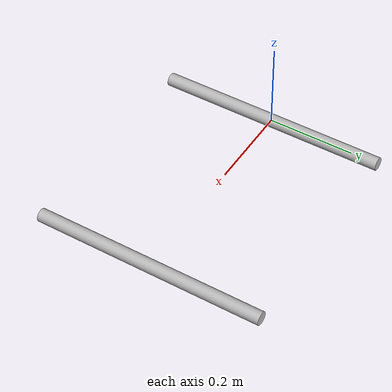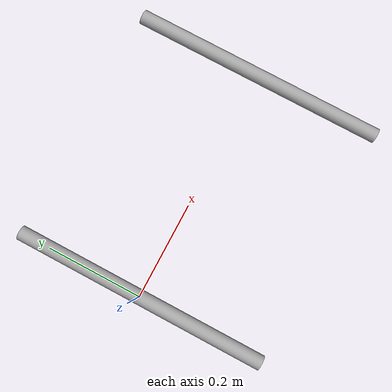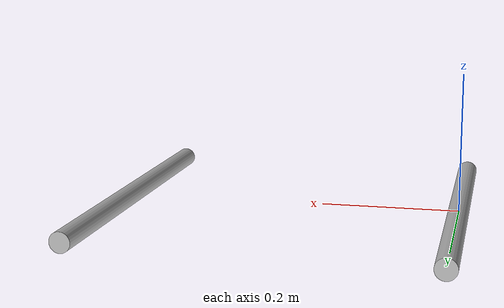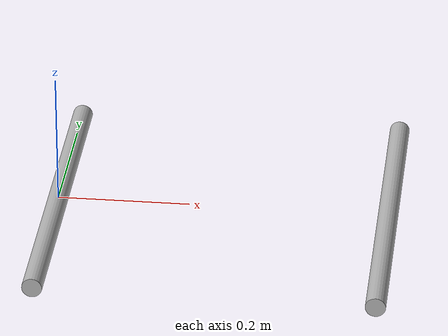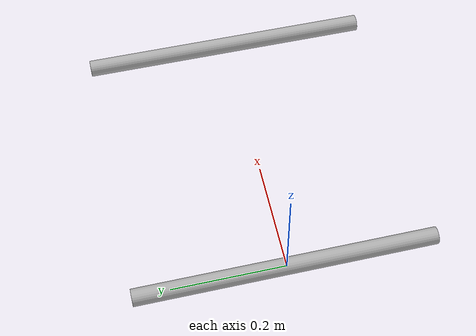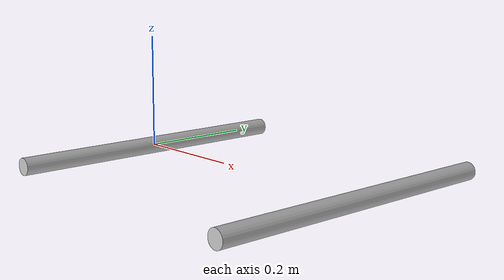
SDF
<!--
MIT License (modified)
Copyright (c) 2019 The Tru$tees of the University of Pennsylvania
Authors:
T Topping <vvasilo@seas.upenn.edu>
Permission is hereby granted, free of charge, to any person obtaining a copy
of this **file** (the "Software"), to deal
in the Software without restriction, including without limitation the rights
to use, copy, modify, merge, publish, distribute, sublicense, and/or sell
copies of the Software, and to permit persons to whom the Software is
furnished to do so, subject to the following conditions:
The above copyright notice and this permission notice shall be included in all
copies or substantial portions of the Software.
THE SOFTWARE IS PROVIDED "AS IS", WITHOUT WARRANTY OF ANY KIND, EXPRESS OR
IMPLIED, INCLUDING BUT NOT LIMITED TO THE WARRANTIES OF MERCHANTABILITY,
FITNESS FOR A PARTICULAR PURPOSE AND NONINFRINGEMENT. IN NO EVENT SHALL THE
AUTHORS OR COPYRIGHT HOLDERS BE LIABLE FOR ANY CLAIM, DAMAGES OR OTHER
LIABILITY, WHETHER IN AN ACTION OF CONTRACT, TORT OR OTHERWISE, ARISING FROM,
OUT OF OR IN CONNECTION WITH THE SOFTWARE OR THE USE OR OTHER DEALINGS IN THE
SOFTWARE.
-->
<?xml version='1.0'?>

<sdf version='1.6'>
  <model name='bars'>
  <static>true</static>
    <link name='bar1'>
      <pose frame=''>0 0 0 0 -0 0</pose>
      <inertial>
        <mass>1</mass>
        <inertia>
          <ixx>4.78</ixx>
          <ixy>0</ixy>
          <ixz>0</ixz>
          <iyy>6.26</iyy>
          <iyz>0</iyz>
          <izz>8.235</izz>
        </inertia>
        <pose frame=''>0 0 0.0 1.571 -0 0</pose>
      </inertial>
      <gravity>1</gravity>
      <self_collide>0</self_collide>
      <kinematic>0</kinematic>

      <visual name='bar1_visual'>
        <pose frame=''>0 0 0.0 1.571 -0 0</pose>
        <geometry>
          <cylinder>
            <radius>0.015</radius>
            <length>0.53</length>
          </cylinder>
        </geometry>
        <material>
          <script>
            <uri>model://bars/materials/scripts</uri>
            <uri>model://bars/materials/textures</uri>
            <name>bars</name>
          </script>
        </material>
        <cast_shadows>1</cast_shadows>
        <transparency>0</transparency>
      </visual>
      <collision name='bar1_collision'>
        <laser_retro>0</laser_retro>
        <max_contacts>10</max_contacts>
        <pose frame=''>0 0 0 1.571 -0 0</pose>
        <geometry>
          <cylinder>
            <radius>0.015</radius>
            <length>0.53</length>
          </cylinder>
        </geometry>
        <surface>
          <friction>
            <ode>
              <mu>30</mu>
              <mu2>30</mu2>
              <fdir1>0 0 0</fdir1>
              <slip1>0</slip1>
              <slip2>0</slip2>
            </ode>
            <torsional>
              <coefficient>1</coefficient>
              <patch_radius>0</patch_radius>
              <surface_radius>0</surface_radius>
              <use_patch_radius>1</use_patch_radius>
              <ode>
                <slip>0</slip>
              </ode>
            </torsional>
          </friction>
          <bounce/>
          <contact/>
        </surface>
      </collision>
    </link>
    <link name='bar2'>
      <pose frame=''>0.5 0 0 0 -0 0</pose>
      <inertial>
        <mass>1</mass>
        <inertia>
          <ixx>4.78</ixx>
          <ixy>0</ixy>
          <ixz>0</ixz>
          <iyy>6.26</iyy>
          <iyz>0</iyz>
          <izz>8.235</izz>
        </inertia>
        <pose frame=''>0.0 0 0.0 1.571 -0 0</pose>
      </inertial>
      <gravity>1</gravity>
      <self_collide>0</self_collide>
      <kinematic>0</kinematic>

      <visual name='bar2_visual'>
        <pose frame=''>0.0 0 0.0 1.571 -0 0</pose>
        <geometry>
          <cylinder>
            <radius>0.015</radius>
            <length>0.53</length>
          </cylinder>
        </geometry>
        <material>
          <script>
            <uri>model://bars/materials/scripts</uri>
            <uri>model://bars/materials/textures</uri>
            <name>bars</name>
          </script>
        </material>
        <cast_shadows>1</cast_shadows>
        <transparency>0</transparency>
      </visual>
      <collision name='bar2_collision'>
        <laser_retro>0</laser_retro>
        <max_contacts>10</max_contacts>
        <pose frame=''>0.0 0 0 1.571 -0 0</pose>
        <geometry>
          <cylinder>
            <radius>0.015</radius>
            <length>0.53</length>
          </cylinder>
        </geometry>
        <surface>
          <friction>
            <ode>
              <mu>30</mu>
              <mu2>30</mu2>
              <fdir1>0 0 0</fdir1>
              <slip1>0</slip1>
              <slip2>0</slip2>
            </ode>
            <torsional>
              <coefficient>1</coefficient>
              <patch_radius>0</patch_radius>
              <surface_radius>0</surface_radius>
              <use_patch_radius>1</use_patch_radius>
              <ode>
                <slip>0</slip>
              </ode>
            </torsional>
          </friction>
          <bounce/>
          <contact/>
        </surface>
      </collision>
    </link>
    <static>0</static>
    <allow_auto_disable>1</allow_auto_disable>
  </model>
</sdf>
